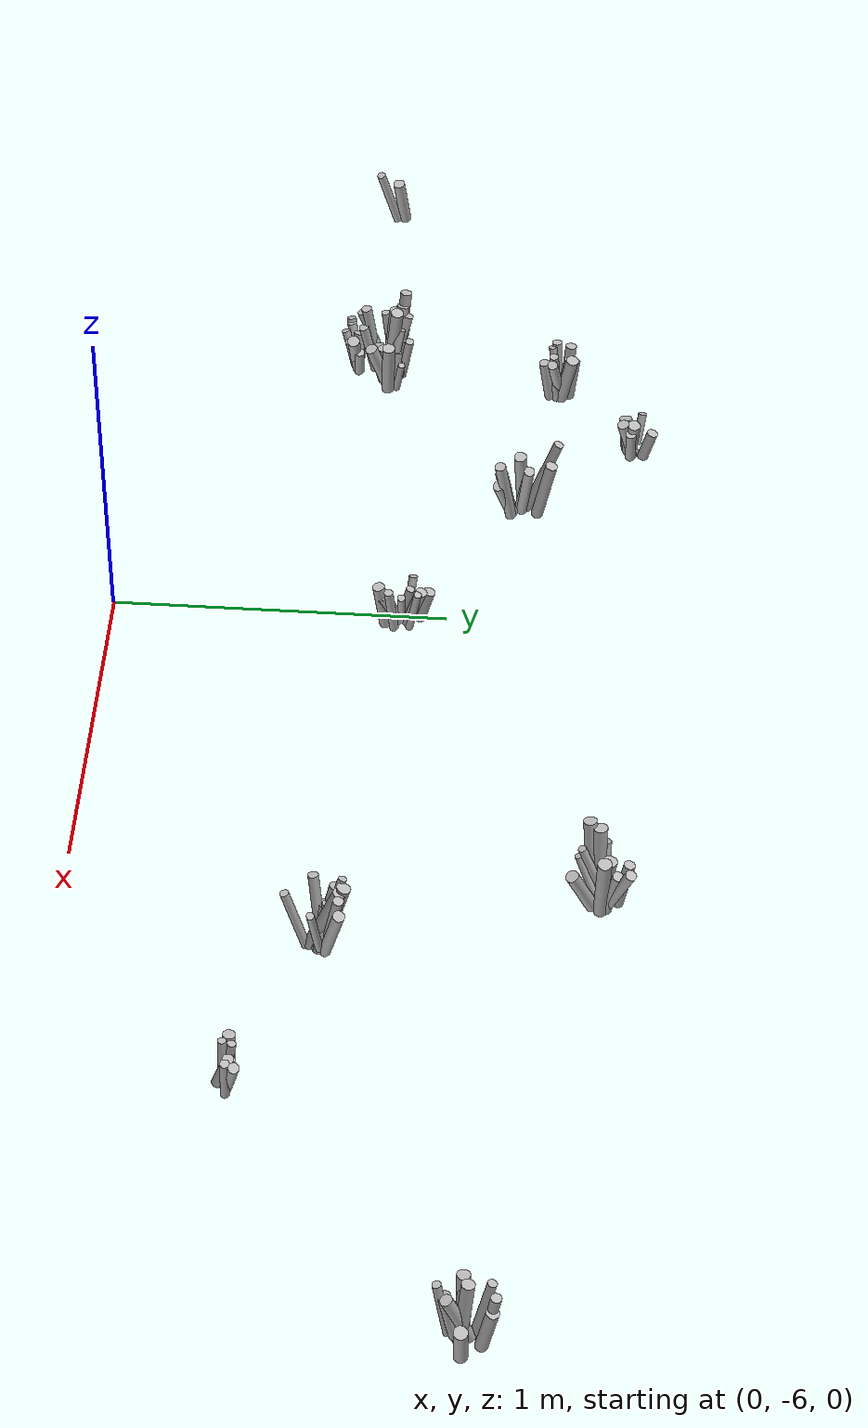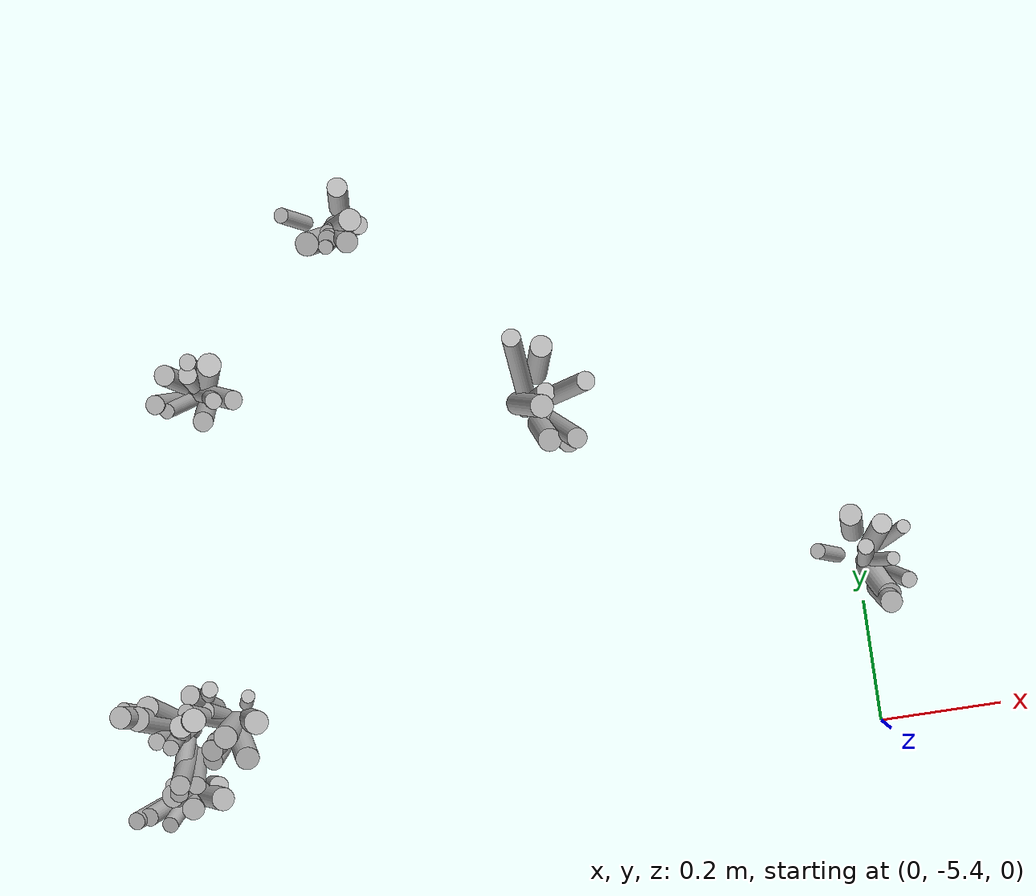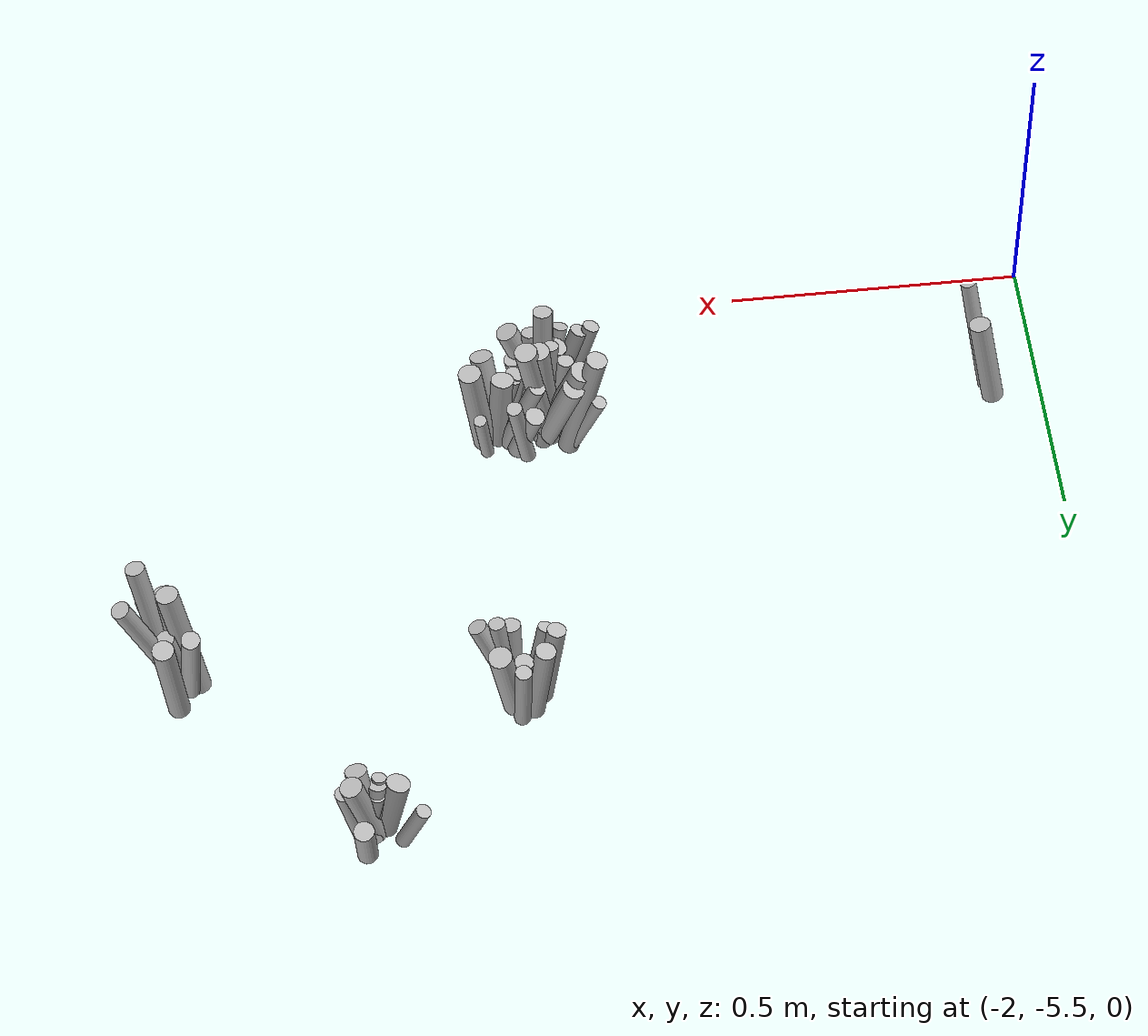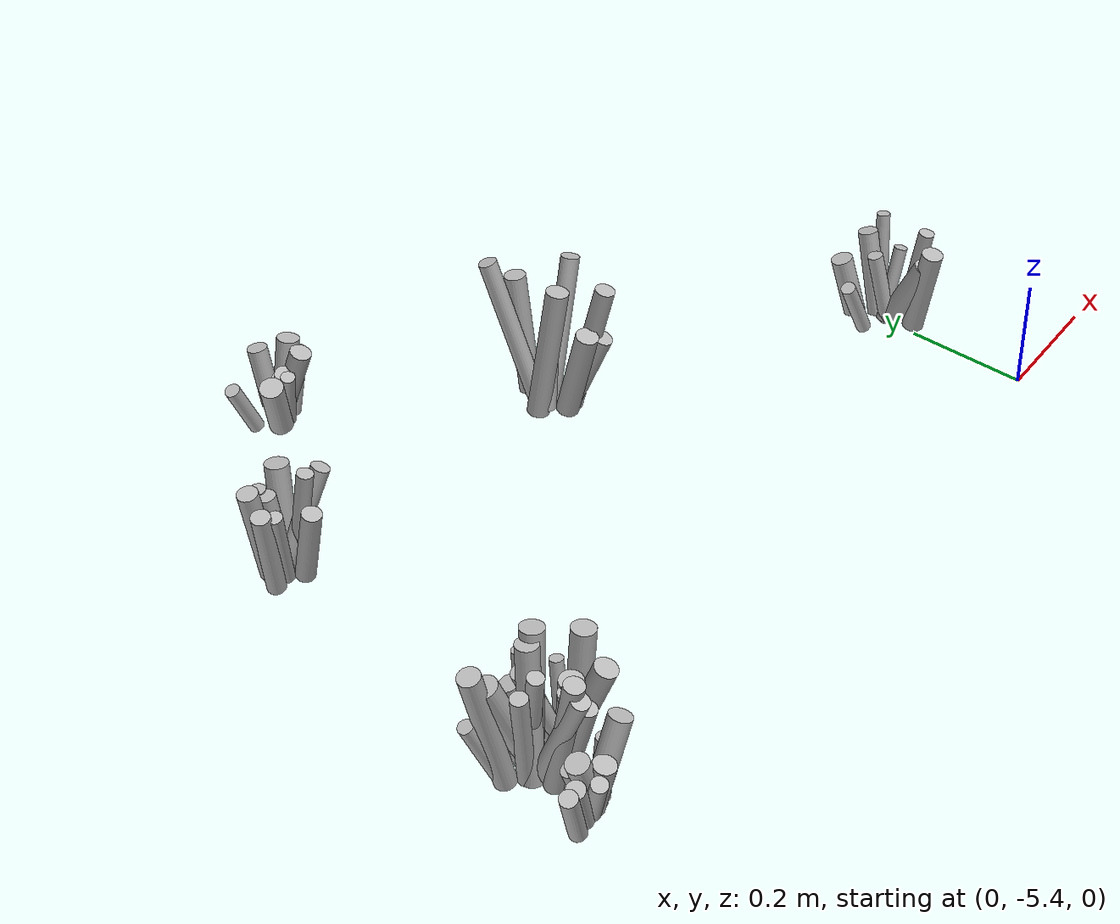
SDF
<sdf version="1.6">
 <world name="default">
  <model name="tussocks">
   <static>true</static>
   <link name="tuft43_0">
    <pose>-0.7658 -4.4609 0.0692 0 0.2464 0.1652</pose>
    <visual name="tuft43_0_v">
     <geometry><cylinder><radius>0.0188</radius><length>0.1505</length></cylinder></geometry>
     <material>
      <script>
       <uri>model://bushfire/materials/scripts</uri>
       <uri>model://bushfire/materials/textures</uri>
       <name>Bushfire/Tussock</name>
      </script>
     </material>
    </visual>
   </link>
   <link name="tuft43_1">
    <pose>-0.7677 -4.4739 0.0664 0 0.2985 5.2051</pose>
    <visual name="tuft43_1_v">
     <geometry><cylinder><radius>0.0181</radius><length>0.1443</length></cylinder></geometry>
     <material>
      <script>
       <uri>model://bushfire/materials/scripts</uri>
       <uri>model://bushfire/materials/textures</uri>
       <name>Bushfire/Foliage2</name>
      </script>
     </material>
    </visual>
   </link>
   <link name="tuft43_2">
    <pose>-0.7765 -4.4639 0.0446 0 0.2718 3.7160</pose>
    <visual name="tuft43_2_v">
     <geometry><cylinder><radius>0.0142</radius><length>0.0970</length></cylinder></geometry>
     <material>
      <script>
       <uri>model://bushfire/materials/scripts</uri>
       <uri>model://bushfire/materials/textures</uri>
       <name>Bushfire/Foliage2</name>
      </script>
     </material>
    </visual>
   </link>
   <link name="tuft43_3">
    <pose>-0.7880 -4.4844 0.0528 0 0.2039 4.1456</pose>
    <visual name="tuft43_3_v">
     <geometry><cylinder><radius>0.0120</radius><length>0.1148</length></cylinder></geometry>
     <material>
      <script>
       <uri>model://bushfire/materials/scripts</uri>
       <uri>model://bushfire/materials/textures</uri>
       <name>Bushfire/Foliage2</name>
      </script>
     </material>
    </visual>
   </link>
   <link name="tuft43_4">
    <pose>-0.7799 -4.4699 0.0522 0 0.2849 4.0511</pose>
    <visual name="tuft43_4_v">
     <geometry><cylinder><radius>0.0160</radius><length>0.1135</length></cylinder></geometry>
     <material>
      <script>
       <uri>model://bushfire/materials/scripts</uri>
       <uri>model://bushfire/materials/textures</uri>
       <name>Bushfire/Foliage2</name>
      </script>
     </material>
    </visual>
   </link>
   <link name="tuft43_5">
    <pose>-0.7644 -4.4124 0.0492 0 0.2472 1.3814</pose>
    <visual name="tuft43_5_v">
     <geometry><cylinder><radius>0.0169</radius><length>0.1070</length></cylinder></geometry>
     <material>
      <script>
       <uri>model://bushfire/materials/scripts</uri>
       <uri>model://bushfire/materials/textures</uri>
       <name>Bushfire/Foliage2</name>
      </script>
     </material>
    </visual>
   </link>
   <link name="tuft43_6">
    <pose>-0.7490 -4.4651 0.0557 0 0.2202 6.1707</pose>
    <visual name="tuft43_6_v">
     <geometry><cylinder><radius>0.0155</radius><length>0.1210</length></cylinder></geometry>
     <material>
      <script>
       <uri>model://bushfire/materials/scripts</uri>
       <uri>model://bushfire/materials/textures</uri>
       <name>Bushfire/Foliage2</name>
      </script>
     </material>
    </visual>
   </link>
   <link name="tuft43_7">
    <pose>-0.8424 -4.4376 0.0471 0 0.3648 2.7957</pose>
    <visual name="tuft43_7_v">
     <geometry><cylinder><radius>0.0128</radius><length>0.1025</length></cylinder></geometry>
     <material>
      <script>
       <uri>model://bushfire/materials/scripts</uri>
       <uri>model://bushfire/materials/textures</uri>
       <name>Bushfire/Tussock</name>
      </script>
     </material>
    </visual>
   </link>
   <link name="tuft43_8">
    <pose>-0.8112 -4.4787 0.0500 0 0.2631 3.5565</pose>
    <visual name="tuft43_8_v">
     <geometry><cylinder><radius>0.0199</radius><length>0.1087</length></cylinder></geometry>
     <material>
      <script>
       <uri>model://bushfire/materials/scripts</uri>
       <uri>model://bushfire/materials/textures</uri>
       <name>Bushfire/Tussock</name>
      </script>
     </material>
    </visual>
   </link>
   <link name="tuft45_0">
    <pose>1.1234 -4.4704 0.1075 0 0.3852 0.7540</pose>
    <visual name="tuft45_0_v">
     <geometry><cylinder><radius>0.0157</radius><length>0.2336</length></cylinder></geometry>
     <material>
      <script>
       <uri>model://bushfire/materials/scripts</uri>
       <uri>model://bushfire/materials/textures</uri>
       <name>Bushfire/Tussock</name>
      </script>
     </material>
    </visual>
   </link>
   <link name="tuft45_1">
    <pose>1.0669 -4.4549 0.0741 0 0.1589 1.7053</pose>
    <visual name="tuft45_1_v">
     <geometry><cylinder><radius>0.0161</radius><length>0.1612</length></cylinder></geometry>
     <material>
      <script>
       <uri>model://bushfire/materials/scripts</uri>
       <uri>model://bushfire/materials/textures</uri>
       <name>Bushfire/Foliage2</name>
      </script>
     </material>
    </visual>
   </link>
   <link name="tuft45_2">
    <pose>1.1121 -4.5131 0.1077 0 0.1312 0.0718</pose>
    <visual name="tuft45_2_v">
     <geometry><cylinder><radius>0.0198</radius><length>0.2341</length></cylinder></geometry>
     <material>
      <script>
       <uri>model://bushfire/materials/scripts</uri>
       <uri>model://bushfire/materials/textures</uri>
       <name>Bushfire/Foliage2</name>
      </script>
     </material>
    </visual>
   </link>
   <link name="tuft45_3">
    <pose>1.1063 -4.5672 0.0817 0 0.4124 5.2573</pose>
    <visual name="tuft45_3_v">
     <geometry><cylinder><radius>0.0185</radius><length>0.1776</length></cylinder></geometry>
     <material>
      <script>
       <uri>model://bushfire/materials/scripts</uri>
       <uri>model://bushfire/materials/textures</uri>
       <name>Bushfire/Tussock</name>
      </script>
     </material>
    </visual>
   </link>
   <link name="tuft45_4">
    <pose>1.0759 -4.5066 0.0857 0 0.1171 1.4799</pose>
    <visual name="tuft45_4_v">
     <geometry><cylinder><radius>0.0200</radius><length>0.1863</length></cylinder></geometry>
     <material>
      <script>
       <uri>model://bushfire/materials/scripts</uri>
       <uri>model://bushfire/materials/textures</uri>
       <name>Bushfire/Tussock</name>
      </script>
     </material>
    </visual>
   </link>
   <link name="tuft45_5">
    <pose>1.1112 -4.4861 0.0849 0 0.2289 0.6875</pose>
    <visual name="tuft45_5_v">
     <geometry><cylinder><radius>0.0157</radius><length>0.1845</length></cylinder></geometry>
     <material>
      <script>
       <uri>model://bushfire/materials/scripts</uri>
       <uri>model://bushfire/materials/textures</uri>
       <name>Bushfire/Tussock</name>
      </script>
     </material>
    </visual>
   </link>
   <link name="tuft45_6">
    <pose>1.0571 -4.5521 0.0775 0 0.4049 4.2529</pose>
    <visual name="tuft45_6_v">
     <geometry><cylinder><radius>0.0113</radius><length>0.1686</length></cylinder></geometry>
     <material>
      <script>
       <uri>model://bushfire/materials/scripts</uri>
       <uri>model://bushfire/materials/textures</uri>
       <name>Bushfire/Foliage2</name>
      </script>
     </material>
    </visual>
   </link>
   <link name="tuft45_7">
    <pose>1.0232 -4.5437 0.1230 0 0.1871 3.6350</pose>
    <visual name="tuft45_7_v">
     <geometry><cylinder><radius>0.0193</radius><length>0.2675</length></cylinder></geometry>
     <material>
      <script>
       <uri>model://bushfire/materials/scripts</uri>
       <uri>model://bushfire/materials/textures</uri>
       <name>Bushfire/Foliage2</name>
      </script>
     </material>
    </visual>
   </link>
   <link name="tuft45_8">
    <pose>1.0374 -4.5138 0.0879 0 0.3633 3.0886</pose>
    <visual name="tuft45_8_v">
     <geometry><cylinder><radius>0.0187</radius><length>0.1912</length></cylinder></geometry>
     <material>
      <script>
       <uri>model://bushfire/materials/scripts</uri>
       <uri>model://bushfire/materials/textures</uri>
       <name>Bushfire/Foliage2</name>
      </script>
     </material>
    </visual>
   </link>
   <link name="tuft45_9">
    <pose>1.0279 -4.5243 0.1170 0 0.1031 3.3203</pose>
    <visual name="tuft45_9_v">
     <geometry><cylinder><radius>0.0197</radius><length>0.2545</length></cylinder></geometry>
     <material>
      <script>
       <uri>model://bushfire/materials/scripts</uri>
       <uri>model://bushfire/materials/textures</uri>
       <name>Bushfire/Foliage2</name>
      </script>
     </material>
    </visual>
   </link>
   <link name="tuft45_10">
    <pose>1.0738 -4.5335 0.1078 0 0.3559 4.6374</pose>
    <visual name="tuft45_10_v">
     <geometry><cylinder><radius>0.0119</radius><length>0.2343</length></cylinder></geometry>
     <material>
      <script>
       <uri>model://bushfire/materials/scripts</uri>
       <uri>model://bushfire/materials/textures</uri>
       <name>Bushfire/Foliage2</name>
      </script>
     </material>
    </visual>
   </link>
   <link name="tuft65_0">
    <pose>-1.0421 -4.6561 0.0678 0 0.1003 1.6780</pose>
    <visual name="tuft65_0_v">
     <geometry><cylinder><radius>0.0139</radius><length>0.1473</length></cylinder></geometry>
     <material>
      <script>
       <uri>model://bushfire/materials/scripts</uri>
       <uri>model://bushfire/materials/textures</uri>
       <name>Bushfire/Foliage2</name>
      </script>
     </material>
    </visual>
   </link>
   <link name="tuft65_1">
    <pose>-1.0181 -4.7103 0.0895 0 0.1389 5.6719</pose>
    <visual name="tuft65_1_v">
     <geometry><cylinder><radius>0.0136</radius><length>0.1945</length></cylinder></geometry>
     <material>
      <script>
       <uri>model://bushfire/materials/scripts</uri>
       <uri>model://bushfire/materials/textures</uri>
       <name>Bushfire/Foliage2</name>
      </script>
     </material>
    </visual>
   </link>
   <link name="tuft65_2">
    <pose>-1.0108 -4.7073 0.0886 0 0.4040 5.9011</pose>
    <visual name="tuft65_2_v">
     <geometry><cylinder><radius>0.0157</radius><length>0.1927</length></cylinder></geometry>
     <material>
      <script>
       <uri>model://bushfire/materials/scripts</uri>
       <uri>model://bushfire/materials/textures</uri>
       <name>Bushfire/Foliage2</name>
      </script>
     </material>
    </visual>
   </link>
   <link name="tuft65_3">
    <pose>-1.0716 -4.6722 0.0823 0 0.1263 2.5190</pose>
    <visual name="tuft65_3_v">
     <geometry><cylinder><radius>0.0171</radius><length>0.1789</length></cylinder></geometry>
     <material>
      <script>
       <uri>model://bushfire/materials/scripts</uri>
       <uri>model://bushfire/materials/textures</uri>
       <name>Bushfire/Foliage2</name>
      </script>
     </material>
    </visual>
   </link>
   <link name="tuft65_4">
    <pose>-1.0703 -4.7144 0.0770 0 0.2162 3.6450</pose>
    <visual name="tuft65_4_v">
     <geometry><cylinder><radius>0.0123</radius><length>0.1674</length></cylinder></geometry>
     <material>
      <script>
       <uri>model://bushfire/materials/scripts</uri>
       <uri>model://bushfire/materials/textures</uri>
       <name>Bushfire/Tussock</name>
      </script>
     </material>
    </visual>
   </link>
   <link name="tuft65_5">
    <pose>-1.0193 -4.6747 0.0845 0 0.2212 0.8655</pose>
    <visual name="tuft65_5_v">
     <geometry><cylinder><radius>0.0196</radius><length>0.1837</length></cylinder></geometry>
     <material>
      <script>
       <uri>model://bushfire/materials/scripts</uri>
       <uri>model://bushfire/materials/textures</uri>
       <name>Bushfire/Foliage2</name>
      </script>
     </material>
    </visual>
   </link>
   <link name="tuft65_6">
    <pose>-1.0333 -4.7364 0.0664 0 0.1622 4.8240</pose>
    <visual name="tuft65_6_v">
     <geometry><cylinder><radius>0.0164</radius><length>0.1443</length></cylinder></geometry>
     <material>
      <script>
       <uri>model://bushfire/materials/scripts</uri>
       <uri>model://bushfire/materials/textures</uri>
       <name>Bushfire/Foliage2</name>
      </script>
     </material>
    </visual>
   </link>
   <link name="tuft65_7">
    <pose>-1.0430 -4.6793 0.0681 0 0.1433 1.8647</pose>
    <visual name="tuft65_7_v">
     <geometry><cylinder><radius>0.0158</radius><length>0.1480</length></cylinder></geometry>
     <material>
      <script>
       <uri>model://bushfire/materials/scripts</uri>
       <uri>model://bushfire/materials/textures</uri>
       <name>Bushfire/Tussock</name>
      </script>
     </material>
    </visual>
   </link>
   <link name="tuft65_8">
    <pose>-1.0914 -4.7078 0.0794 0 0.1380 3.3495</pose>
    <visual name="tuft65_8_v">
     <geometry><cylinder><radius>0.0158</radius><length>0.1725</length></cylinder></geometry>
     <material>
      <script>
       <uri>model://bushfire/materials/scripts</uri>
       <uri>model://bushfire/materials/textures</uri>
       <name>Bushfire/Tussock</name>
      </script>
     </material>
    </visual>
   </link>
   <link name="tuft66_0">
    <pose>-1.1956 -5.3668 0.0557 0 0.3467 3.4892</pose>
    <visual name="tuft66_0_v">
     <geometry><cylinder><radius>0.0151</radius><length>0.1211</length></cylinder></geometry>
     <material>
      <script>
       <uri>model://bushfire/materials/scripts</uri>
       <uri>model://bushfire/materials/textures</uri>
       <name>Bushfire/Tussock</name>
      </script>
     </material>
    </visual>
   </link>
   <link name="tuft66_1">
    <pose>-1.1624 -5.3397 0.0413 0 0.2751 2.4042</pose>
    <visual name="tuft66_1_v">
     <geometry><cylinder><radius>0.0144</radius><length>0.0897</length></cylinder></geometry>
     <material>
      <script>
       <uri>model://bushfire/materials/scripts</uri>
       <uri>model://bushfire/materials/textures</uri>
       <name>Bushfire/Tussock</name>
      </script>
     </material>
    </visual>
   </link>
   <link name="tuft66_2">
    <pose>-1.1162 -5.3559 0.0705 0 0.3652 6.1266</pose>
    <visual name="tuft66_2_v">
     <geometry><cylinder><radius>0.0191</radius><length>0.1533</length></cylinder></geometry>
     <material>
      <script>
       <uri>model://bushfire/materials/scripts</uri>
       <uri>model://bushfire/materials/textures</uri>
       <name>Bushfire/Tussock</name>
      </script>
     </material>
    </visual>
   </link>
   <link name="tuft66_3">
    <pose>-1.1179 -5.3540 0.0480 0 0.1541 6.1754</pose>
    <visual name="tuft66_3_v">
     <geometry><cylinder><radius>0.0135</radius><length>0.1043</length></cylinder></geometry>
     <material>
      <script>
       <uri>model://bushfire/materials/scripts</uri>
       <uri>model://bushfire/materials/textures</uri>
       <name>Bushfire/Foliage2</name>
      </script>
     </material>
    </visual>
   </link>
   <link name="tuft66_4">
    <pose>-1.2177 -5.3713 0.0577 0 0.3141 3.4424</pose>
    <visual name="tuft66_4_v">
     <geometry><cylinder><radius>0.0142</radius><length>0.1255</length></cylinder></geometry>
     <material>
      <script>
       <uri>model://bushfire/materials/scripts</uri>
       <uri>model://bushfire/materials/textures</uri>
       <name>Bushfire/Tussock</name>
      </script>
     </material>
    </visual>
   </link>
   <link name="tuft66_5">
    <pose>-1.1715 -5.3766 0.0526 0 0.3505 4.0370</pose>
    <visual name="tuft66_5_v">
     <geometry><cylinder><radius>0.0133</radius><length>0.1143</length></cylinder></geometry>
     <material>
      <script>
       <uri>model://bushfire/materials/scripts</uri>
       <uri>model://bushfire/materials/textures</uri>
       <name>Bushfire/Foliage2</name>
      </script>
     </material>
    </visual>
   </link>
   <link name="tuft66_6">
    <pose>-1.1463 -5.3635 0.0465 0 0.1782 5.0312</pose>
    <visual name="tuft66_6_v">
     <geometry><cylinder><radius>0.0184</radius><length>0.1012</length></cylinder></geometry>
     <material>
      <script>
       <uri>model://bushfire/materials/scripts</uri>
       <uri>model://bushfire/materials/textures</uri>
       <name>Bushfire/Foliage2</name>
      </script>
     </material>
    </visual>
   </link>
   <link name="tuft66_7">
    <pose>-1.1057 -5.3427 0.0436 0 0.1814 0.1718</pose>
    <visual name="tuft66_7_v">
     <geometry><cylinder><radius>0.0158</radius><length>0.0947</length></cylinder></geometry>
     <material>
      <script>
       <uri>model://bushfire/materials/scripts</uri>
       <uri>model://bushfire/materials/textures</uri>
       <name>Bushfire/Foliage2</name>
      </script>
     </material>
    </visual>
   </link>
   <link name="tuft66_8">
    <pose>-1.1559 -5.3493 0.0535 0 0.2987 2.9171</pose>
    <visual name="tuft66_8_v">
     <geometry><cylinder><radius>0.0189</radius><length>0.1163</length></cylinder></geometry>
     <material>
      <script>
       <uri>model://bushfire/materials/scripts</uri>
       <uri>model://bushfire/materials/textures</uri>
       <name>Bushfire/Tussock</name>
      </script>
     </material>
    </visual>
   </link>
   <link name="tuft103_0">
    <pose>1.2747 -5.2672 0.0735 0 0.2551 2.8247</pose>
    <visual name="tuft103_0_v">
     <geometry><cylinder><radius>0.0195</radius><length>0.1597</length></cylinder></geometry>
     <material>
      <script>
       <uri>model://bushfire/materials/scripts</uri>
       <uri>model://bushfire/materials/textures</uri>
       <name>Bushfire/Tussock</name>
      </script>
     </material>
    </visual>
   </link>
   <link name="tuft103_1">
    <pose>1.2649 -5.2541 0.1008 0 0.3193 2.3450</pose>
    <visual name="tuft103_1_v">
     <geometry><cylinder><radius>0.0192</radius><length>0.2192</length></cylinder></geometry>
     <material>
      <script>
       <uri>model://bushfire/materials/scripts</uri>
       <uri>model://bushfire/materials/textures</uri>
       <name>Bushfire/Tussock</name>
      </script>
     </material>
    </visual>
   </link>
   <link name="tuft103_2">
    <pose>1.2744 -5.2617 0.0792 0 0.1356 2.1774</pose>
    <visual name="tuft103_2_v">
     <geometry><cylinder><radius>0.0141</radius><length>0.1722</length></cylinder></geometry>
     <material>
      <script>
       <uri>model://bushfire/materials/scripts</uri>
       <uri>model://bushfire/materials/textures</uri>
       <name>Bushfire/Foliage2</name>
      </script>
     </material>
    </visual>
   </link>
   <link name="tuft103_3">
    <pose>1.3395 -5.2794 0.1217 0 0.3402 6.1091</pose>
    <visual name="tuft103_3_v">
     <geometry><cylinder><radius>0.0111</radius><length>0.2646</length></cylinder></geometry>
     <material>
      <script>
       <uri>model://bushfire/materials/scripts</uri>
       <uri>model://bushfire/materials/textures</uri>
       <name>Bushfire/Tussock</name>
      </script>
     </material>
    </visual>
   </link>
   <link name="tuft103_4">
    <pose>1.2774 -5.3389 0.1013 0 0.2571 4.6851</pose>
    <visual name="tuft103_4_v">
     <geometry><cylinder><radius>0.0126</radius><length>0.2203</length></cylinder></geometry>
     <material>
      <script>
       <uri>model://bushfire/materials/scripts</uri>
       <uri>model://bushfire/materials/textures</uri>
       <name>Bushfire/Tussock</name>
      </script>
     </material>
    </visual>
   </link>
   <link name="tuft103_5">
    <pose>1.2619 -5.2786 0.1193 0 0.2073 3.6561</pose>
    <visual name="tuft103_5_v">
     <geometry><cylinder><radius>0.0146</radius><length>0.2594</length></cylinder></geometry>
     <material>
      <script>
       <uri>model://bushfire/materials/scripts</uri>
       <uri>model://bushfire/materials/textures</uri>
       <name>Bushfire/Foliage2</name>
      </script>
     </material>
    </visual>
   </link>
   <link name="tuft103_6">
    <pose>1.2982 -5.2386 0.1103 0 0.2024 1.0112</pose>
    <visual name="tuft103_6_v">
     <geometry><cylinder><radius>0.0148</radius><length>0.2398</length></cylinder></geometry>
     <material>
      <script>
       <uri>model://bushfire/materials/scripts</uri>
       <uri>model://bushfire/materials/textures</uri>
       <name>Bushfire/Foliage2</name>
      </script>
     </material>
    </visual>
   </link>
   <link name="tuft103_7">
    <pose>1.2641 -5.2469 0.1173 0 0.3354 2.1771</pose>
    <visual name="tuft103_7_v">
     <geometry><cylinder><radius>0.0119</radius><length>0.2550</length></cylinder></geometry>
     <material>
      <script>
       <uri>model://bushfire/materials/scripts</uri>
       <uri>model://bushfire/materials/textures</uri>
       <name>Bushfire/Foliage2</name>
      </script>
     </material>
    </visual>
   </link>
   <link name="tuft103_8">
    <pose>1.2738 -5.2389 0.1128 0 0.2667 1.7521</pose>
    <visual name="tuft103_8_v">
     <geometry><cylinder><radius>0.0197</radius><length>0.2452</length></cylinder></geometry>
     <material>
      <script>
       <uri>model://bushfire/materials/scripts</uri>
       <uri>model://bushfire/materials/textures</uri>
       <name>Bushfire/Tussock</name>
      </script>
     </material>
    </visual>
   </link>
   <link name="tuft103_9">
    <pose>1.2798 -5.2606 0.1122 0 0.3591 1.5048</pose>
    <visual name="tuft103_9_v">
     <geometry><cylinder><radius>0.0182</radius><length>0.2439</length></cylinder></geometry>
     <material>
      <script>
       <uri>model://bushfire/materials/scripts</uri>
       <uri>model://bushfire/materials/textures</uri>
       <name>Bushfire/Foliage2</name>
      </script>
     </material>
    </visual>
   </link>
   <link name="tuft103_10">
    <pose>1.3394 -5.2349 0.1236 0 0.3652 0.5125</pose>
    <visual name="tuft103_10_v">
     <geometry><cylinder><radius>0.0163</radius><length>0.2687</length></cylinder></geometry>
     <material>
      <script>
       <uri>model://bushfire/materials/scripts</uri>
       <uri>model://bushfire/materials/textures</uri>
       <name>Bushfire/Foliage2</name>
      </script>
     </material>
    </visual>
   </link>
   <link name="tuft109_0">
    <pose>-0.4503 -4.7850 0.1181 0 0.3532 0.2282</pose>
    <visual name="tuft109_0_v">
     <geometry><cylinder><radius>0.0157</radius><length>0.2567</length></cylinder></geometry>
     <material>
      <script>
       <uri>model://bushfire/materials/scripts</uri>
       <uri>model://bushfire/materials/textures</uri>
       <name>Bushfire/Tussock</name>
      </script>
     </material>
    </visual>
   </link>
   <link name="tuft109_1">
    <pose>-0.4537 -4.8452 0.1106 0 0.2250 5.5167</pose>
    <visual name="tuft109_1_v">
     <geometry><cylinder><radius>0.0167</radius><length>0.2404</length></cylinder></geometry>
     <material>
      <script>
       <uri>model://bushfire/materials/scripts</uri>
       <uri>model://bushfire/materials/textures</uri>
       <name>Bushfire/Tussock</name>
      </script>
     </material>
    </visual>
   </link>
   <link name="tuft109_2">
    <pose>-0.5019 -4.7979 0.1102 0 0.1707 5.9401</pose>
    <visual name="tuft109_2_v">
     <geometry><cylinder><radius>0.0190</radius><length>0.2395</length></cylinder></geometry>
     <material>
      <script>
       <uri>model://bushfire/materials/scripts</uri>
       <uri>model://bushfire/materials/textures</uri>
       <name>Bushfire/Foliage2</name>
      </script>
     </material>
    </visual>
   </link>
   <link name="tuft109_3">
    <pose>-0.4913 -4.7912 0.0683 0 0.2840 0.4708</pose>
    <visual name="tuft109_3_v">
     <geometry><cylinder><radius>0.0158</radius><length>0.1485</length></cylinder></geometry>
     <material>
      <script>
       <uri>model://bushfire/materials/scripts</uri>
       <uri>model://bushfire/materials/textures</uri>
       <name>Bushfire/Foliage2</name>
      </script>
     </material>
    </visual>
   </link>
   <link name="tuft109_4">
    <pose>-0.4769 -4.7280 0.1009 0 0.1878 1.2059</pose>
    <visual name="tuft109_4_v">
     <geometry><cylinder><radius>0.0181</radius><length>0.2194</length></cylinder></geometry>
     <material>
      <script>
       <uri>model://bushfire/materials/scripts</uri>
       <uri>model://bushfire/materials/textures</uri>
       <name>Bushfire/Foliage2</name>
      </script>
     </material>
    </visual>
   </link>
   <link name="tuft109_5">
    <pose>-0.4637 -4.8452 0.0687 0 0.3801 5.4046</pose>
    <visual name="tuft109_5_v">
     <geometry><cylinder><radius>0.0186</radius><length>0.1494</length></cylinder></geometry>
     <material>
      <script>
       <uri>model://bushfire/materials/scripts</uri>
       <uri>model://bushfire/materials/textures</uri>
       <name>Bushfire/Tussock</name>
      </script>
     </material>
    </visual>
   </link>
   <link name="tuft109_6">
    <pose>-0.4841 -4.8442 0.0769 0 0.2035 5.1029</pose>
    <visual name="tuft109_6_v">
     <geometry><cylinder><radius>0.0192</radius><length>0.1671</length></cylinder></geometry>
     <material>
      <script>
       <uri>model://bushfire/materials/scripts</uri>
       <uri>model://bushfire/materials/textures</uri>
       <name>Bushfire/Foliage2</name>
      </script>
     </material>
    </visual>
   </link>
   <link name="tuft109_7">
    <pose>-0.5106 -4.7351 0.1265 0 0.3378 1.6856</pose>
    <visual name="tuft109_7_v">
     <geometry><cylinder><radius>0.0154</radius><length>0.2751</length></cylinder></geometry>
     <material>
      <script>
       <uri>model://bushfire/materials/scripts</uri>
       <uri>model://bushfire/materials/textures</uri>
       <name>Bushfire/Tussock</name>
      </script>
     </material>
    </visual>
   </link>
   <link name="tuft118_0">
    <pose>-1.1052 -5.2026 0.0607 0 0.3331 2.2891</pose>
    <visual name="tuft118_0_v">
     <geometry><cylinder><radius>0.0166</radius><length>0.1319</length></cylinder></geometry>
     <material>
      <script>
       <uri>model://bushfire/materials/scripts</uri>
       <uri>model://bushfire/materials/textures</uri>
       <name>Bushfire/Tussock</name>
      </script>
     </material>
    </visual>
   </link>
   <link name="tuft118_1">
    <pose>-1.0858 -5.2804 0.0553 0 0.3737 4.0754</pose>
    <visual name="tuft118_1_v">
     <geometry><cylinder><radius>0.0163</radius><length>0.1202</length></cylinder></geometry>
     <material>
      <script>
       <uri>model://bushfire/materials/scripts</uri>
       <uri>model://bushfire/materials/textures</uri>
       <name>Bushfire/Foliage2</name>
      </script>
     </material>
    </visual>
   </link>
   <link name="tuft118_2">
    <pose>-1.0513 -5.2751 0.0770 0 0.3326 5.1713</pose>
    <visual name="tuft118_2_v">
     <geometry><cylinder><radius>0.0194</radius><length>0.1674</length></cylinder></geometry>
     <material>
      <script>
       <uri>model://bushfire/materials/scripts</uri>
       <uri>model://bushfire/materials/textures</uri>
       <name>Bushfire/Foliage2</name>
      </script>
     </material>
    </visual>
   </link>
   <link name="tuft118_3">
    <pose>-1.0267 -5.2445 0.0877 0 0.1285 0.1569</pose>
    <visual name="tuft118_3_v">
     <geometry><cylinder><radius>0.0197</radius><length>0.1906</length></cylinder></geometry>
     <material>
      <script>
       <uri>model://bushfire/materials/scripts</uri>
       <uri>model://bushfire/materials/textures</uri>
       <name>Bushfire/Tussock</name>
      </script>
     </material>
    </visual>
   </link>
   <link name="tuft118_4">
    <pose>-1.0665 -5.2545 0.0645 0 0.1258 4.0950</pose>
    <visual name="tuft118_4_v">
     <geometry><cylinder><radius>0.0195</radius><length>0.1403</length></cylinder></geometry>
     <material>
      <script>
       <uri>model://bushfire/materials/scripts</uri>
       <uri>model://bushfire/materials/textures</uri>
       <name>Bushfire/Tussock</name>
      </script>
     </material>
    </visual>
   </link>
   <link name="tuft118_5">
    <pose>-1.0714 -5.2546 0.0632 0 0.3258 3.6418</pose>
    <visual name="tuft118_5_v">
     <geometry><cylinder><radius>0.0122</radius><length>0.1374</length></cylinder></geometry>
     <material>
      <script>
       <uri>model://bushfire/materials/scripts</uri>
       <uri>model://bushfire/materials/textures</uri>
       <name>Bushfire/Foliage2</name>
      </script>
     </material>
    </visual>
   </link>
   <link name="tuft118_6">
    <pose>-1.0908 -5.2269 0.0475 0 0.2973 2.4321</pose>
    <visual name="tuft118_6_v">
     <geometry><cylinder><radius>0.0166</radius><length>0.1032</length></cylinder></geometry>
     <material>
      <script>
       <uri>model://bushfire/materials/scripts</uri>
       <uri>model://bushfire/materials/textures</uri>
       <name>Bushfire/Foliage2</name>
      </script>
     </material>
    </visual>
   </link>
   <link name="tuft118_7">
    <pose>-1.0821 -5.2672 0.0616 0 0.3008 3.8792</pose>
    <visual name="tuft118_7_v">
     <geometry><cylinder><radius>0.0180</radius><length>0.1340</length></cylinder></geometry>
     <material>
      <script>
       <uri>model://bushfire/materials/scripts</uri>
       <uri>model://bushfire/materials/textures</uri>
       <name>Bushfire/Foliage2</name>
      </script>
     </material>
    </visual>
   </link>
   <link name="tuft118_8">
    <pose>-1.0338 -5.2109 0.0504 0 0.1944 0.9246</pose>
    <visual name="tuft118_8_v">
     <geometry><cylinder><radius>0.0111</radius><length>0.1095</length></cylinder></geometry>
     <material>
      <script>
       <uri>model://bushfire/materials/scripts</uri>
       <uri>model://bushfire/materials/textures</uri>
       <name>Bushfire/Tussock</name>
      </script>
     </material>
    </visual>
   </link>
   <link name="tuft118_9">
    <pose>-1.1009 -5.2270 0.0829 0 0.3336 2.5831</pose>
    <visual name="tuft118_9_v">
     <geometry><cylinder><radius>0.0145</radius><length>0.1801</length></cylinder></geometry>
     <material>
      <script>
       <uri>model://bushfire/materials/scripts</uri>
       <uri>model://bushfire/materials/textures</uri>
       <name>Bushfire/Foliage2</name>
      </script>
     </material>
    </visual>
   </link>
   <link name="tuft122_5">
    <pose>-1.8936 -5.2990 0.1008 0 0.2991 5.2805</pose>
    <visual name="tuft122_5_v">
     <geometry><cylinder><radius>0.0136</radius><length>0.2192</length></cylinder></geometry>
     <material>
      <script>
       <uri>model://bushfire/materials/scripts</uri>
       <uri>model://bushfire/materials/textures</uri>
       <name>Bushfire/Foliage2</name>
      </script>
     </material>
    </visual>
   </link>
   <link name="tuft122_7">
    <pose>-1.9042 -5.2571 0.0791 0 0.2154 5.6716</pose>
    <visual name="tuft122_7_v">
     <geometry><cylinder><radius>0.0185</radius><length>0.1720</length></cylinder></geometry>
     <material>
      <script>
       <uri>model://bushfire/materials/scripts</uri>
       <uri>model://bushfire/materials/textures</uri>
       <name>Bushfire/Tussock</name>
      </script>
     </material>
    </visual>
   </link>
   <link name="tuft123_0">
    <pose>-0.0049 -5.0671 0.0497 0 0.2767 1.8043</pose>
    <visual name="tuft123_0_v">
     <geometry><cylinder><radius>0.0184</radius><length>0.1081</length></cylinder></geometry>
     <material>
      <script>
       <uri>model://bushfire/materials/scripts</uri>
       <uri>model://bushfire/materials/textures</uri>
       <name>Bushfire/Tussock</name>
      </script>
     </material>
    </visual>
   </link>
   <link name="tuft123_1">
    <pose>0.0095 -5.1234 0.0604 0 0.2490 1.6951</pose>
    <visual name="tuft123_1_v">
     <geometry><cylinder><radius>0.0132</radius><length>0.1313</length></cylinder></geometry>
     <material>
      <script>
       <uri>model://bushfire/materials/scripts</uri>
       <uri>model://bushfire/materials/textures</uri>
       <name>Bushfire/Tussock</name>
      </script>
     </material>
    </visual>
   </link>
   <link name="tuft123_2">
    <pose>0.0544 -5.1616 0.0785 0 0.1657 5.7026</pose>
    <visual name="tuft123_2_v">
     <geometry><cylinder><radius>0.0132</radius><length>0.1707</length></cylinder></geometry>
     <material>
      <script>
       <uri>model://bushfire/materials/scripts</uri>
       <uri>model://bushfire/materials/textures</uri>
       <name>Bushfire/Tussock</name>
      </script>
     </material>
    </visual>
   </link>
   <link name="tuft123_3">
    <pose>0.0278 -5.0947 0.0701 0 0.3089 1.1521</pose>
    <visual name="tuft123_3_v">
     <geometry><cylinder><radius>0.0169</radius><length>0.1523</length></cylinder></geometry>
     <material>
      <script>
       <uri>model://bushfire/materials/scripts</uri>
       <uri>model://bushfire/materials/textures</uri>
       <name>Bushfire/Tussock</name>
      </script>
     </material>
    </visual>
   </link>
   <link name="tuft123_4">
    <pose>0.0248 -5.1663 0.0590 0 0.4166 5.1110</pose>
    <visual name="tuft123_4_v">
     <geometry><cylinder><radius>0.0197</radius><length>0.1283</length></cylinder></geometry>
     <material>
      <script>
       <uri>model://bushfire/materials/scripts</uri>
       <uri>model://bushfire/materials/textures</uri>
       <name>Bushfire/Tussock</name>
      </script>
     </material>
    </visual>
   </link>
   <link name="tuft123_5">
    <pose>0.0543 -5.0958 0.0792 0 0.2353 0.7055</pose>
    <visual name="tuft123_5_v">
     <geometry><cylinder><radius>0.0114</radius><length>0.1721</length></cylinder></geometry>
     <material>
      <script>
       <uri>model://bushfire/materials/scripts</uri>
       <uri>model://bushfire/materials/textures</uri>
       <name>Bushfire/Tussock</name>
      </script>
     </material>
    </visual>
   </link>
   <link name="tuft123_6">
    <pose>0.0302 -5.1906 0.0736 0 0.1363 5.0374</pose>
    <visual name="tuft123_6_v">
     <geometry><cylinder><radius>0.0180</radius><length>0.1600</length></cylinder></geometry>
     <material>
      <script>
       <uri>model://bushfire/materials/scripts</uri>
       <uri>model://bushfire/materials/textures</uri>
       <name>Bushfire/Tussock</name>
      </script>
     </material>
    </visual>
   </link>
   <link name="tuft123_7">
    <pose>0.0279 -5.1328 0.0621 0 0.3167 0.0087</pose>
    <visual name="tuft123_7_v">
     <geometry><cylinder><radius>0.0114</radius><length>0.1350</length></cylinder></geometry>
     <material>
      <script>
       <uri>model://bushfire/materials/scripts</uri>
       <uri>model://bushfire/materials/textures</uri>
       <name>Bushfire/Tussock</name>
      </script>
     </material>
    </visual>
   </link>
   <link name="tuft123_8">
    <pose>-0.0507 -5.1106 0.0512 0 0.3788 2.7932</pose>
    <visual name="tuft123_8_v">
     <geometry><cylinder><radius>0.0126</radius><length>0.1113</length></cylinder></geometry>
     <material>
      <script>
       <uri>model://bushfire/materials/scripts</uri>
       <uri>model://bushfire/materials/textures</uri>
       <name>Bushfire/Foliage2</name>
      </script>
     </material>
    </visual>
   </link>
   <link name="tuft156_0">
    <pose>2.4905 -4.8189 0.1046 0 0.1069 2.4152</pose>
    <visual name="tuft156_0_v">
     <geometry><cylinder><radius>0.0172</radius><length>0.2274</length></cylinder></geometry>
     <material>
      <script>
       <uri>model://bushfire/materials/scripts</uri>
       <uri>model://bushfire/materials/textures</uri>
       <name>Bushfire/Foliage2</name>
      </script>
     </material>
    </visual>
   </link>
   <link name="tuft156_1">
    <pose>2.4712 -4.8733 0.0885 0 0.1729 4.3156</pose>
    <visual name="tuft156_1_v">
     <geometry><cylinder><radius>0.0118</radius><length>0.1924</length></cylinder></geometry>
     <material>
      <script>
       <uri>model://bushfire/materials/scripts</uri>
       <uri>model://bushfire/materials/textures</uri>
       <name>Bushfire/Tussock</name>
      </script>
     </material>
    </visual>
   </link>
   <link name="tuft156_2">
    <pose>2.5139 -4.7607 0.0751 0 0.1613 1.2371</pose>
    <visual name="tuft156_2_v">
     <geometry><cylinder><radius>0.0171</radius><length>0.1632</length></cylinder></geometry>
     <material>
      <script>
       <uri>model://bushfire/materials/scripts</uri>
       <uri>model://bushfire/materials/textures</uri>
       <name>Bushfire/Foliage2</name>
      </script>
     </material>
    </visual>
   </link>
   <link name="tuft156_3">
    <pose>2.4776 -4.8537 0.0693 0 0.2419 4.2699</pose>
    <visual name="tuft156_3_v">
     <geometry><cylinder><radius>0.0178</radius><length>0.1507</length></cylinder></geometry>
     <material>
      <script>
       <uri>model://bushfire/materials/scripts</uri>
       <uri>model://bushfire/materials/textures</uri>
       <name>Bushfire/Tussock</name>
      </script>
     </material>
    </visual>
   </link>
   <link name="tuft156_4">
    <pose>2.4731 -4.7728 0.0984 0 0.2050 1.9610</pose>
    <visual name="tuft156_4_v">
     <geometry><cylinder><radius>0.0126</radius><length>0.2140</length></cylinder></geometry>
     <material>
      <script>
       <uri>model://bushfire/materials/scripts</uri>
       <uri>model://bushfire/materials/textures</uri>
       <name>Bushfire/Tussock</name>
      </script>
     </material>
    </visual>
   </link>
   <link name="tuft156_5">
    <pose>2.5584 -4.8228 0.0711 0 0.1974 6.2586</pose>
    <visual name="tuft156_5_v">
     <geometry><cylinder><radius>0.0185</radius><length>0.1546</length></cylinder></geometry>
     <material>
      <script>
       <uri>model://bushfire/materials/scripts</uri>
       <uri>model://bushfire/materials/textures</uri>
       <name>Bushfire/Tussock</name>
      </script>
     </material>
    </visual>
   </link>
   <link name="tuft156_6">
    <pose>2.4266 -4.8299 0.0706 0 0.1792 3.2723</pose>
    <visual name="tuft156_6_v">
     <geometry><cylinder><radius>0.0113</radius><length>0.1534</length></cylinder></geometry>
     <material>
      <script>
       <uri>model://bushfire/materials/scripts</uri>
       <uri>model://bushfire/materials/textures</uri>
       <name>Bushfire/Tussock</name>
      </script>
     </material>
    </visual>
   </link>
   <link name="tuft156_7">
    <pose>2.4385 -4.8236 0.0841 0 0.1363 3.1851</pose>
    <visual name="tuft156_7_v">
     <geometry><cylinder><radius>0.0176</radius><length>0.1828</length></cylinder></geometry>
     <material>
      <script>
       <uri>model://bushfire/materials/scripts</uri>
       <uri>model://bushfire/materials/textures</uri>
       <name>Bushfire/Foliage2</name>
      </script>
     </material>
    </visual>
   </link>
   <link name="tuft156_8">
    <pose>2.4567 -4.8210 0.0720 0 0.3692 3.1368</pose>
    <visual name="tuft156_8_v">
     <geometry><cylinder><radius>0.0183</radius><length>0.1564</length></cylinder></geometry>
     <material>
      <script>
       <uri>model://bushfire/materials/scripts</uri>
       <uri>model://bushfire/materials/textures</uri>
       <name>Bushfire/Foliage2</name>
      </script>
     </material>
    </visual>
   </link>
   <link name="tuft156_9">
    <pose>2.5057 -4.7560 0.0994 0 0.1386 1.3788</pose>
    <visual name="tuft156_9_v">
     <geometry><cylinder><radius>0.0140</radius><length>0.2161</length></cylinder></geometry>
     <material>
      <script>
       <uri>model://bushfire/materials/scripts</uri>
       <uri>model://bushfire/materials/textures</uri>
       <name>Bushfire/Foliage2</name>
      </script>
     </material>
    </visual>
   </link>
   <link name="tuft156_10">
    <pose>2.4962 -4.8322 0.0888 0 0.3399 4.9984</pose>
    <visual name="tuft156_10_v">
     <geometry><cylinder><radius>0.0164</radius><length>0.1931</length></cylinder></geometry>
     <material>
      <script>
       <uri>model://bushfire/materials/scripts</uri>
       <uri>model://bushfire/materials/textures</uri>
       <name>Bushfire/Foliage2</name>
      </script>
     </material>
    </visual>
   </link>
   <link name="tuft173_1">
    <pose>1.7708 -5.4768 0.0605 0 0.1465 0.8978</pose>
    <visual name="tuft173_1_v">
     <geometry><cylinder><radius>0.0151</radius><length>0.1315</length></cylinder></geometry>
     <material>
      <script>
       <uri>model://bushfire/materials/scripts</uri>
       <uri>model://bushfire/materials/textures</uri>
       <name>Bushfire/Foliage2</name>
      </script>
     </material>
    </visual>
   </link>
   <link name="tuft173_3">
    <pose>1.8016 -5.4639 0.0753 0 0.3550 0.5610</pose>
    <visual name="tuft173_3_v">
     <geometry><cylinder><radius>0.0150</radius><length>0.1637</length></cylinder></geometry>
     <material>
      <script>
       <uri>model://bushfire/materials/scripts</uri>
       <uri>model://bushfire/materials/textures</uri>
       <name>Bushfire/Tussock</name>
      </script>
     </material>
    </visual>
   </link>
   <link name="tuft173_6">
    <pose>1.7181 -5.4758 0.0681 0 0.1284 2.8246</pose>
    <visual name="tuft173_6_v">
     <geometry><cylinder><radius>0.0173</radius><length>0.1481</length></cylinder></geometry>
     <material>
      <script>
       <uri>model://bushfire/materials/scripts</uri>
       <uri>model://bushfire/materials/textures</uri>
       <name>Bushfire/Tussock</name>
      </script>
     </material>
    </visual>
   </link>
   <link name="tuft173_7">
    <pose>1.7605 -5.4861 0.0508 0 0.3234 1.5758</pose>
    <visual name="tuft173_7_v">
     <geometry><cylinder><radius>0.0162</radius><length>0.1104</length></cylinder></geometry>
     <material>
      <script>
       <uri>model://bushfire/materials/scripts</uri>
       <uri>model://bushfire/materials/textures</uri>
       <name>Bushfire/Tussock</name>
      </script>
     </material>
    </visual>
   </link>
   <link name="tuft173_9">
    <pose>1.8047 -5.4766 0.0751 0 0.1467 0.2885</pose>
    <visual name="tuft173_9_v">
     <geometry><cylinder><radius>0.0127</radius><length>0.1633</length></cylinder></geometry>
     <material>
      <script>
       <uri>model://bushfire/materials/scripts</uri>
       <uri>model://bushfire/materials/textures</uri>
       <name>Bushfire/Tussock</name>
      </script>
     </material>
    </visual>
   </link>
   <link name="tuft173_10">
    <pose>1.7505 -5.4887 0.0744 0 0.1163 3.0399</pose>
    <visual name="tuft173_10_v">
     <geometry><cylinder><radius>0.0118</radius><length>0.1618</length></cylinder></geometry>
     <material>
      <script>
       <uri>model://bushfire/materials/scripts</uri>
       <uri>model://bushfire/materials/textures</uri>
       <name>Bushfire/Tussock</name>
      </script>
     </material>
    </visual>
   </link>
   <link name="tuft173_11">
    <pose>1.7477 -5.4719 0.0696 0 0.1491 2.1955</pose>
    <visual name="tuft173_11_v">
     <geometry><cylinder><radius>0.0120</radius><length>0.1513</length></cylinder></geometry>
     <material>
      <script>
       <uri>model://bushfire/materials/scripts</uri>
       <uri>model://bushfire/materials/textures</uri>
       <name>Bushfire/Foliage2</name>
      </script>
     </material>
    </visual>
   </link>
   <link name="tuft188_0">
    <pose>-1.1641 -5.2179 0.0885 0 0.3432 2.3097</pose>
    <visual name="tuft188_0_v">
     <geometry><cylinder><radius>0.0191</radius><length>0.1923</length></cylinder></geometry>
     <material>
      <script>
       <uri>model://bushfire/materials/scripts</uri>
       <uri>model://bushfire/materials/textures</uri>
       <name>Bushfire/Foliage2</name>
      </script>
     </material>
    </visual>
   </link>
   <link name="tuft188_1">
    <pose>-1.1425 -5.2410 0.1163 0 0.1329 0.7829</pose>
    <visual name="tuft188_1_v">
     <geometry><cylinder><radius>0.0183</radius><length>0.2529</length></cylinder></geometry>
     <material>
      <script>
       <uri>model://bushfire/materials/scripts</uri>
       <uri>model://bushfire/materials/textures</uri>
       <name>Bushfire/Foliage2</name>
      </script>
     </material>
    </visual>
   </link>
   <link name="tuft188_2">
    <pose>-1.0959 -5.1927 0.0758 0 0.2151 0.8034</pose>
    <visual name="tuft188_2_v">
     <geometry><cylinder><radius>0.0133</radius><length>0.1647</length></cylinder></geometry>
     <material>
      <script>
       <uri>model://bushfire/materials/scripts</uri>
       <uri>model://bushfire/materials/textures</uri>
       <name>Bushfire/Foliage2</name>
      </script>
     </material>
    </visual>
   </link>
   <link name="tuft188_3">
    <pose>-1.1687 -5.2477 0.0891 0 0.1025 3.3846</pose>
    <visual name="tuft188_3_v">
     <geometry><cylinder><radius>0.0139</radius><length>0.1937</length></cylinder></geometry>
     <material>
      <script>
       <uri>model://bushfire/materials/scripts</uri>
       <uri>model://bushfire/materials/textures</uri>
       <name>Bushfire/Foliage2</name>
      </script>
     </material>
    </visual>
   </link>
   <link name="tuft188_4">
    <pose>-1.1482 -5.2978 0.1054 0 0.3493 4.6180</pose>
    <visual name="tuft188_4_v">
     <geometry><cylinder><radius>0.0149</radius><length>0.2291</length></cylinder></geometry>
     <material>
      <script>
       <uri>model://bushfire/materials/scripts</uri>
       <uri>model://bushfire/materials/textures</uri>
       <name>Bushfire/Tussock</name>
      </script>
     </material>
    </visual>
   </link>
   <link name="tuft188_5">
    <pose>-1.2025 -5.2117 0.1162 0 0.2015 2.6822</pose>
    <visual name="tuft188_5_v">
     <geometry><cylinder><radius>0.0180</radius><length>0.2527</length></cylinder></geometry>
     <material>
      <script>
       <uri>model://bushfire/materials/scripts</uri>
       <uri>model://bushfire/materials/textures</uri>
       <name>Bushfire/Foliage2</name>
      </script>
     </material>
    </visual>
   </link>
   <link name="tuft188_6">
    <pose>-1.1298 -5.3113 0.0828 0 0.2160 4.8967</pose>
    <visual name="tuft188_6_v">
     <geometry><cylinder><radius>0.0152</radius><length>0.1799</length></cylinder></geometry>
     <material>
      <script>
       <uri>model://bushfire/materials/scripts</uri>
       <uri>model://bushfire/materials/textures</uri>
       <name>Bushfire/Tussock</name>
      </script>
     </material>
    </visual>
   </link>
   <link name="tuft188_7">
    <pose>-1.1304 -5.2342 0.1217 0 0.1958 0.5173</pose>
    <visual name="tuft188_7_v">
     <geometry><cylinder><radius>0.0194</radius><length>0.2645</length></cylinder></geometry>
     <material>
      <script>
       <uri>model://bushfire/materials/scripts</uri>
       <uri>model://bushfire/materials/textures</uri>
       <name>Bushfire/Foliage2</name>
      </script>
     </material>
    </visual>
   </link>
   <link name="tuft188_8">
    <pose>-1.1458 -5.2466 0.1032 0 0.1560 4.1964</pose>
    <visual name="tuft188_8_v">
     <geometry><cylinder><radius>0.0132</radius><length>0.2244</length></cylinder></geometry>
     <material>
      <script>
       <uri>model://bushfire/materials/scripts</uri>
       <uri>model://bushfire/materials/textures</uri>
       <name>Bushfire/Foliage2</name>
      </script>
     </material>
    </visual>
   </link>
   <link name="tuft188_9">
    <pose>-1.2064 -5.2062 0.0674 0 0.3612 2.6373</pose>
    <visual name="tuft188_9_v">
     <geometry><cylinder><radius>0.0127</radius><length>0.1465</length></cylinder></geometry>
     <material>
      <script>
       <uri>model://bushfire/materials/scripts</uri>
       <uri>model://bushfire/materials/textures</uri>
       <name>Bushfire/Tussock</name>
      </script>
     </material>
    </visual>
   </link>
   <link name="tuft188_10">
    <pose>-1.1459 -5.3034 0.1117 0 0.1589 4.6618</pose>
    <visual name="tuft188_10_v">
     <geometry><cylinder><radius>0.0163</radius><length>0.2428</length></cylinder></geometry>
     <material>
      <script>
       <uri>model://bushfire/materials/scripts</uri>
       <uri>model://bushfire/materials/textures</uri>
       <name>Bushfire/Tussock</name>
      </script>
     </material>
    </visual>
   </link>
   <link name="tuft188_11">
    <pose>-1.1690 -5.2266 0.1006 0 0.3454 2.6309</pose>
    <visual name="tuft188_11_v">
     <geometry><cylinder><radius>0.0200</radius><length>0.2188</length></cylinder></geometry>
     <material>
      <script>
       <uri>model://bushfire/materials/scripts</uri>
       <uri>model://bushfire/materials/textures</uri>
       <name>Bushfire/Foliage2</name>
      </script>
     </material>
    </visual>
   </link>
  </model>
 </world>
</sdf>
